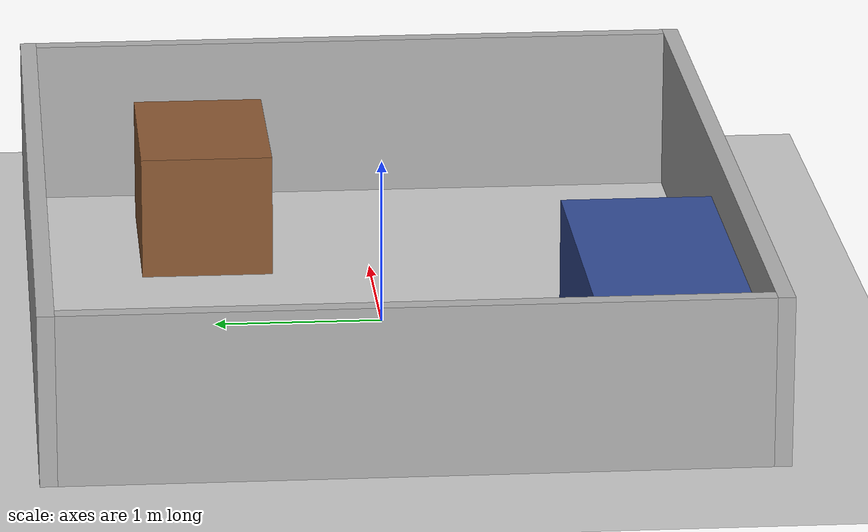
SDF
<?xml version="1.0" ?>
<sdf version="1.6">
  <world name="room">
    <include><uri>model://ground_plane</uri></include>
    <include><uri>model://sun</uri></include>
    <!-- /gazebo/set_entity_state etc.: lets scripts/sim_person.py move a "person" around -->
    <plugin name="gazebo_ros_state" filename="libgazebo_ros_state.so">
      <ros><namespace>/gazebo</namespace></ros>
      <update_rate>20.0</update_rate>
    </plugin>
    <physics type="ode">
      <!-- 500 Hz physics (default 1000) halves the physics load on the 2-core VM -->
      <real_time_update_rate>500.0</real_time_update_rate>
      <max_step_size>0.002</max_step_size>
    </physics>
    <model name="wall_north">
      <static>true</static>
      <pose>0 2.05 0.5 0 0 0</pose>
      <link name="link">
        <collision name="collision"><geometry><box><size>5.2 0.1 1.0</size></box></geometry></collision>
        <visual name="visual"><geometry><box><size>5.2 0.1 1.0</size></box></geometry>
          <material><ambient>0.7 0.7 0.7 1</ambient><diffuse>0.7 0.7 0.7 1</diffuse></material></visual>
      </link>
    </model>
    <model name="wall_south">
      <static>true</static>
      <pose>0 -2.05 0.5 0 0 0</pose>
      <link name="link">
        <collision name="collision"><geometry><box><size>5.2 0.1 1.0</size></box></geometry></collision>
        <visual name="visual"><geometry><box><size>5.2 0.1 1.0</size></box></geometry>
          <material><ambient>0.7 0.7 0.7 1</ambient><diffuse>0.7 0.7 0.7 1</diffuse></material></visual>
      </link>
    </model>
    <model name="wall_east">
      <static>true</static>
      <pose>2.55 0 0.5 0 0 0</pose>
      <link name="link">
        <collision name="collision"><geometry><box><size>0.1 4.0 1.0</size></box></geometry></collision>
        <visual name="visual"><geometry><box><size>0.1 4.0 1.0</size></box></geometry>
          <material><ambient>0.7 0.7 0.7 1</ambient><diffuse>0.7 0.7 0.7 1</diffuse></material></visual>
      </link>
    </model>
    <model name="wall_west">
      <static>true</static>
      <pose>-2.55 0 0.5 0 0 0</pose>
      <link name="link">
        <collision name="collision"><geometry><box><size>0.1 4.0 1.0</size></box></geometry></collision>
        <visual name="visual"><geometry><box><size>0.1 4.0 1.0</size></box></geometry>
          <material><ambient>0.7 0.7 0.7 1</ambient><diffuse>0.7 0.7 0.7 1</diffuse></material></visual>
      </link>
    </model>
    <model name="table">
      <static>true</static>
      <pose>1.5 1.0 0.375 0 0 0</pose>
      <link name="link">
        <collision name="collision"><geometry><box><size>1.2 0.8 0.75</size></box></geometry></collision>
        <visual name="visual"><geometry><box><size>1.2 0.8 0.75</size></box></geometry>
          <material><ambient>0.55 0.35 0.2 1</ambient><diffuse>0.55 0.35 0.2 1</diffuse></material></visual>
      </link>
    </model>
    <model name="couch">
      <static>true</static>
      <pose>-1.2 -1.5 0.4 0 0 0</pose>
      <link name="link">
        <collision name="collision"><geometry><box><size>2.0 0.9 0.8</size></box></geometry></collision>
        <visual name="visual"><geometry><box><size>2.0 0.9 0.8</size></box></geometry>
          <material><ambient>0.2 0.3 0.6 1</ambient><diffuse>0.2 0.3 0.6 1</diffuse></material></visual>
      </link>
    </model>
  </world>
</sdf>
